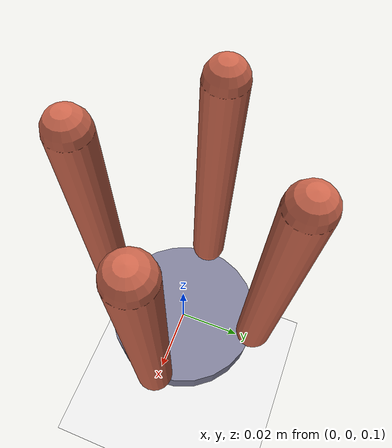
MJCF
<?xml version="1.0" encoding="utf-8"?>
<mujoco model="Power_Gripper_-_Wet_-_Soft_Objects">
    <option timestep="0.002" gravity="0 0 -9.81"/>

    <default>
        <joint damping="0.5" armature="0.01"/>
        <geom condim="4" friction="0.8 0.005 0.0001" rgba="0.8 0.4 0.3 1"/>
    </default>

    <worldbody>
        <light diffuse=".5 .5 .5" pos="0 0 3" dir="0 0 -1"/>
        <geom type="plane" size="1 1 0.1" rgba=".9 .9 .9 1"/>

        <!-- Palm -->
        <body name="palm" pos="0 0 0.1">
            <joint name="palm_free" type="free"/>
            <geom type="cylinder" size="0.0250 0.0050" rgba="0.5 0.5 0.6 1"/>

            <!-- Fingers -->

        <body name="finger_0" pos="0.0250 0.0000 0.0100">
            <joint name="finger_0_base" type="hinge" axis="0 1 0" range="-1.57 1.57"/>
            <geom type="capsule" size="0.0056" fromto="0 0 0 0 0 0.0750"/>

            <body name="finger_0_seg_1" pos="0 0 0.0150">
                <joint name="finger_0_joint_1" type="hinge" axis="0 1 0" range="-1.0 1.0"/>
                <geom type="capsule" size="0.0053" fromto="0 0 0 0 0 0.0150"/>

            <body name="finger_0_seg_2" pos="0 0 0.0150">
                <joint name="finger_0_joint_2" type="hinge" axis="0 1 0" range="-1.0 1.0"/>
                <geom type="capsule" size="0.0050" fromto="0 0 0 0 0 0.0150"/>

            <body name="finger_0_seg_3" pos="0 0 0.0150">
                <joint name="finger_0_joint_3" type="hinge" axis="0 1 0" range="-1.0 1.0"/>
                <geom type="capsule" size="0.0046" fromto="0 0 0 0 0 0.0150"/>

            <body name="finger_0_seg_4" pos="0 0 0.0150">
                <joint name="finger_0_joint_4" type="hinge" axis="0 1 0" range="-1.0 1.0"/>
                <geom type="capsule" size="0.0043" fromto="0 0 0 0 0 0.0150"/>
            </body>
            </body>
            </body>
            </body>
        </body>

        <body name="finger_1" pos="0.0000 0.0250 0.0100">
            <joint name="finger_1_base" type="hinge" axis="0 1 0" range="-1.57 1.57"/>
            <geom type="capsule" size="0.0056" fromto="0 0 0 0 0 0.0750"/>

            <body name="finger_1_seg_1" pos="0 0 0.0150">
                <joint name="finger_1_joint_1" type="hinge" axis="0 1 0" range="-1.0 1.0"/>
                <geom type="capsule" size="0.0053" fromto="0 0 0 0 0 0.0150"/>

            <body name="finger_1_seg_2" pos="0 0 0.0150">
                <joint name="finger_1_joint_2" type="hinge" axis="0 1 0" range="-1.0 1.0"/>
                <geom type="capsule" size="0.0050" fromto="0 0 0 0 0 0.0150"/>

            <body name="finger_1_seg_3" pos="0 0 0.0150">
                <joint name="finger_1_joint_3" type="hinge" axis="0 1 0" range="-1.0 1.0"/>
                <geom type="capsule" size="0.0046" fromto="0 0 0 0 0 0.0150"/>

            <body name="finger_1_seg_4" pos="0 0 0.0150">
                <joint name="finger_1_joint_4" type="hinge" axis="0 1 0" range="-1.0 1.0"/>
                <geom type="capsule" size="0.0043" fromto="0 0 0 0 0 0.0150"/>
            </body>
            </body>
            </body>
            </body>
        </body>

        <body name="finger_2" pos="-0.0250 0.0000 0.0100">
            <joint name="finger_2_base" type="hinge" axis="0 1 0" range="-1.57 1.57"/>
            <geom type="capsule" size="0.0056" fromto="0 0 0 0 0 0.0750"/>

            <body name="finger_2_seg_1" pos="0 0 0.0150">
                <joint name="finger_2_joint_1" type="hinge" axis="0 1 0" range="-1.0 1.0"/>
                <geom type="capsule" size="0.0053" fromto="0 0 0 0 0 0.0150"/>

            <body name="finger_2_seg_2" pos="0 0 0.0150">
                <joint name="finger_2_joint_2" type="hinge" axis="0 1 0" range="-1.0 1.0"/>
                <geom type="capsule" size="0.0050" fromto="0 0 0 0 0 0.0150"/>

            <body name="finger_2_seg_3" pos="0 0 0.0150">
                <joint name="finger_2_joint_3" type="hinge" axis="0 1 0" range="-1.0 1.0"/>
                <geom type="capsule" size="0.0046" fromto="0 0 0 0 0 0.0150"/>

            <body name="finger_2_seg_4" pos="0 0 0.0150">
                <joint name="finger_2_joint_4" type="hinge" axis="0 1 0" range="-1.0 1.0"/>
                <geom type="capsule" size="0.0043" fromto="0 0 0 0 0 0.0150"/>
            </body>
            </body>
            </body>
            </body>
        </body>

        <body name="finger_3" pos="-0.0000 -0.0250 0.0100">
            <joint name="finger_3_base" type="hinge" axis="0 1 0" range="-1.57 1.57"/>
            <geom type="capsule" size="0.0056" fromto="0 0 0 0 0 0.0750"/>

            <body name="finger_3_seg_1" pos="0 0 0.0150">
                <joint name="finger_3_joint_1" type="hinge" axis="0 1 0" range="-1.0 1.0"/>
                <geom type="capsule" size="0.0053" fromto="0 0 0 0 0 0.0150"/>

            <body name="finger_3_seg_2" pos="0 0 0.0150">
                <joint name="finger_3_joint_2" type="hinge" axis="0 1 0" range="-1.0 1.0"/>
                <geom type="capsule" size="0.0050" fromto="0 0 0 0 0 0.0150"/>

            <body name="finger_3_seg_3" pos="0 0 0.0150">
                <joint name="finger_3_joint_3" type="hinge" axis="0 1 0" range="-1.0 1.0"/>
                <geom type="capsule" size="0.0046" fromto="0 0 0 0 0 0.0150"/>

            <body name="finger_3_seg_4" pos="0 0 0.0150">
                <joint name="finger_3_joint_4" type="hinge" axis="0 1 0" range="-1.0 1.0"/>
                <geom type="capsule" size="0.0043" fromto="0 0 0 0 0 0.0150"/>
            </body>
            </body>
            </body>
            </body>
        </body>

        </body>
    </worldbody>

    <actuator>
        <motor name="finger_0_motor" joint="finger_0_base" gear="1"/>
        <motor name="finger_1_motor" joint="finger_1_base" gear="1"/>
        <motor name="finger_2_motor" joint="finger_2_base" gear="1"/>
        <motor name="finger_3_motor" joint="finger_3_base" gear="1"/>

    </actuator>
</mujoco>
